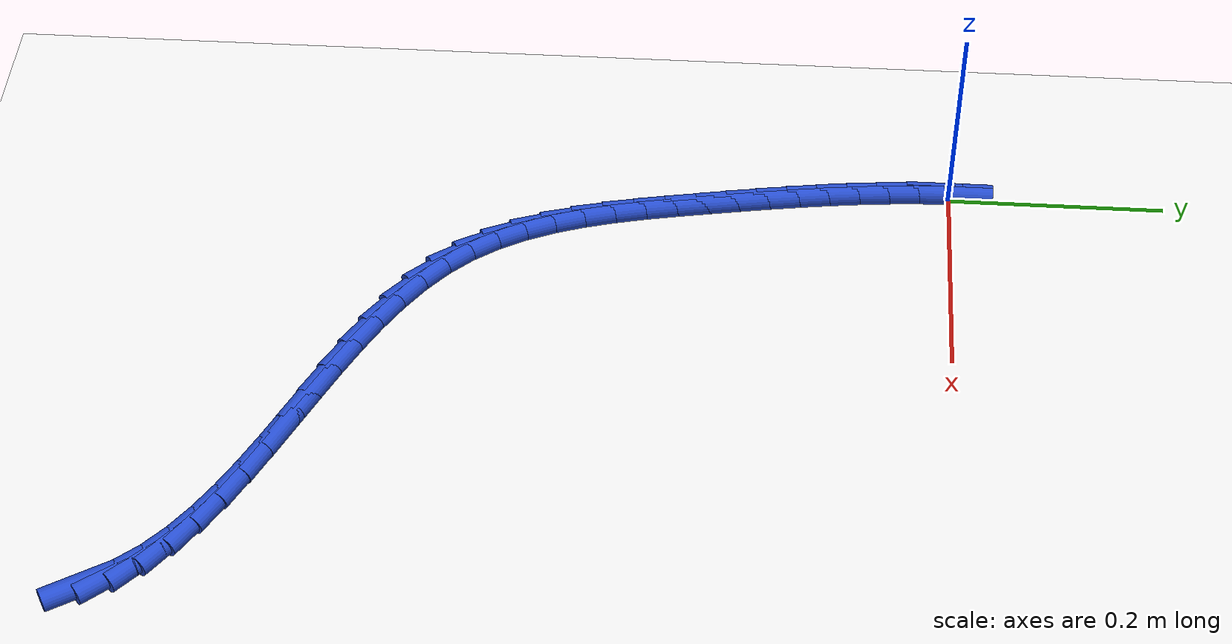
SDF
<sdf version="1.6">
 <world name="default">
  <model name="ground_plane">
   <static>1</static>
   <link name="link">
    <collision name="collision">
     <geometry><plane><normal>0 0 1</normal><size>100 100</size></plane></geometry>
     <surface><friction><ode><mu>100</mu><mu2>50</mu2></ode></friction></surface>
    </collision>
    <visual name="visual">
     <cast_shadows>0</cast_shadows>
     <geometry><plane><normal>0 0 1</normal><size>100 100</size></plane></geometry>
     <material>
      <script><uri>file://media/materials/scripts/gazebo.material</uri><name>Gazebo/WhiteGlow</name></script>
     </material>
    </visual>
   </link>
  </model>
  <model name="line">
   <link name="link_0">
    <pose>1.214306433183765e-17 -2.7755575615628914e-17 0.01 0 1.57 -1.569403293261762</pose>
    <collision name="collision">
     <geometry><cylinder><radius>0.01</radius><length>0.08</length></cylinder></geometry>
    </collision>
    <visual name="visual">
     <material>
      <script><name>Gazebo/Blue</name><uri>file://media/materials/scripts/gazebo.material</uri></script>
     </material>
     <geometry><cylinder><radius>0.01</radius><length>0.08</length></cylinder></geometry>
    </visual>
   </link>
   <link name="link_238">
    <pose>0.4884409696306866 -0.7109093418308293 0.01 0 1.57 -1.036121158485904</pose>
    <collision name="collision">
     <geometry><cylinder><radius>0.01</radius><length>0.08</length></cylinder></geometry>
    </collision>
    <visual name="visual">
     <material>
      <script><name>Gazebo/Blue</name><uri>file://media/materials/scripts/gazebo.material</uri></script>
     </material>
     <geometry><cylinder><radius>0.01</radius><length>0.08</length></cylinder></geometry>
    </visual>
   </link>
   <link name="link_239">
    <pose>0.47521776616132416 -0.688580938119624 0.01 0 1.57 -0.8766272644458876</pose>
    <collision name="collision">
     <geometry><cylinder><radius>0.01</radius><length>0.08</length></cylinder></geometry>
    </collision>
    <visual name="visual">
     <material>
      <script><name>Gazebo/Blue</name><uri>file://media/materials/scripts/gazebo.material</uri></script>
     </material>
     <geometry><cylinder><radius>0.01</radius><length>0.08</length></cylinder></geometry>
    </visual>
   </link>
   <link name="link_240">
    <pose>0.4583068516962378 -0.6682643374437599 0.01 0 1.57 -0.7455294964327617</pose>
    <collision name="collision">
     <geometry><cylinder><radius>0.01</radius><length>0.08</length></cylinder></geometry>
    </collision>
    <visual name="visual">
     <material>
      <script><name>Gazebo/Blue</name><uri>file://media/materials/scripts/gazebo.material</uri></script>
     </material>
     <geometry><cylinder><radius>0.01</radius><length>0.08</length></cylinder></geometry>
    </visual>
   </link>
   <link name="link_241">
    <pose>0.4381808990936235 -0.6496824336571388 0.01 0 1.57 -0.6427471409349513</pose>
    <collision name="collision">
     <geometry><cylinder><radius>0.01</radius><length>0.08</length></cylinder></geometry>
    </collision>
    <visual name="visual">
     <material>
      <script><name>Gazebo/Blue</name><uri>file://media/materials/scripts/gazebo.material</uri></script>
     </material>
     <geometry><cylinder><radius>0.01</radius><length>0.08</length></cylinder></geometry>
    </visual>
   </link>
   <link name="link_242">
    <pose>0.41531258121167547 -0.6325581206136601 0.01 0 1.57 -0.5652246535251038</pose>
    <collision name="collision">
     <geometry><cylinder><radius>0.01</radius><length>0.08</length></cylinder></geometry>
    </collision>
    <visual name="visual">
     <material>
      <script><name>Gazebo/Blue</name><uri>file://media/materials/scripts/gazebo.material</uri></script>
     </material>
     <geometry><cylinder><radius>0.01</radius><length>0.08</length></cylinder></geometry>
    </visual>
   </link>
   <link name="link_243">
    <pose>0.3901745709085902 -0.6166142921672247 0.01 0 1.57 -0.5092674639373485</pose>
    <collision name="collision">
     <geometry><cylinder><radius>0.01</radius><length>0.08</length></cylinder></geometry>
    </collision>
    <visual name="visual">
     <material>
      <script><name>Gazebo/Blue</name><uri>file://media/materials/scripts/gazebo.material</uri></script>
     </material>
     <geometry><cylinder><radius>0.01</radius><length>0.08</length></cylinder></geometry>
    </visual>
   </link>
   <link name="link_244">
    <pose>0.3632395410425615 -0.6015738421717324 0.01 0 1.57 -0.47166880030345837</pose>
    <collision name="collision">
     <geometry><cylinder><radius>0.01</radius><length>0.08</length></cylinder></geometry>
    </collision>
    <visual name="visual">
     <material>
      <script><name>Gazebo/Blue</name><uri>file://media/materials/scripts/gazebo.material</uri></script>
     </material>
     <geometry><cylinder><radius>0.01</radius><length>0.08</length></cylinder></geometry>
    </visual>
   </link>
   <link name="link_245">
    <pose>0.3349801644717862 -0.5871596644810841 0.01 0 1.57 -0.450077179918846</pose>
    <collision name="collision">
     <geometry><cylinder><radius>0.01</radius><length>0.08</length></cylinder></geometry>
    </collision>
    <visual name="visual">
     <material>
      <script><name>Gazebo/Blue</name><uri>file://media/materials/scripts/gazebo.material</uri></script>
     </material>
     <geometry><cylinder><radius>0.01</radius><length>0.08</length></cylinder></geometry>
    </visual>
   </link>
   <link name="link_246">
    <pose>0.30586911405445866 -0.5730946529491798 0.01 0 1.57 -0.44303814688323573</pose>
    <collision name="collision">
     <geometry><cylinder><radius>0.01</radius><length>0.08</length></cylinder></geometry>
    </collision>
    <visual name="visual">
     <material>
      <script><name>Gazebo/Blue</name><uri>file://media/materials/scripts/gazebo.material</uri></script>
     </material>
     <geometry><cylinder><radius>0.01</radius><length>0.08</length></cylinder></geometry>
    </visual>
   </link>
   <link name="link_247">
    <pose>0.2763790626487732 -0.5591017014299197 0.01 0 1.57 -0.4499428381016869</pose>
    <collision name="collision">
     <geometry><cylinder><radius>0.01</radius><length>0.08</length></cylinder></geometry>
    </collision>
    <visual name="visual">
     <material>
      <script><name>Gazebo/Blue</name><uri>file://media/materials/scripts/gazebo.material</uri></script>
     </material>
     <geometry><cylinder><radius>0.01</radius><length>0.08</length></cylinder></geometry>
    </visual>
   </link>
   <link name="link_248">
    <pose>0.24698268311292698 -0.5449037037772047 0.01 0 1.57 -0.4709776331988441</pose>
    <collision name="collision">
     <geometry><cylinder><radius>0.01</radius><length>0.08</length></cylinder></geometry>
    </collision>
    <visual name="visual">
     <material>
      <script><name>Gazebo/Blue</name><uri>file://media/materials/scripts/gazebo.material</uri></script>
     </material>
     <geometry><cylinder><radius>0.01</radius><length>0.08</length></cylinder></geometry>
    </visual>
   </link>
   <link name="link_249">
    <pose>0.21815264830511333 -0.5302235538449344 0.01 0 1.57 -0.5070972490722421</pose>
    <collision name="collision">
     <geometry><cylinder><radius>0.01</radius><length>0.08</length></cylinder></geometry>
    </collision>
    <visual name="visual">
     <material>
      <script><name>Gazebo/Blue</name><uri>file://media/materials/scripts/gazebo.material</uri></script>
     </material>
     <geometry><cylinder><radius>0.01</radius><length>0.08</length></cylinder></geometry>
    </visual>
   </link>
   <link name="link_250">
    <pose>0.19036163108352927 -0.5147841454870098 0.01 0 1.57 -0.5599989408351397</pose>
    <collision name="collision">
     <geometry><cylinder><radius>0.01</radius><length>0.08</length></cylinder></geometry>
    </collision>
    <visual name="visual">
     <material>
      <script><name>Gazebo/Blue</name><uri>file://media/materials/scripts/gazebo.material</uri></script>
     </material>
     <geometry><cylinder><radius>0.01</radius><length>0.08</length></cylinder></geometry>
    </visual>
   </link>
   <link name="link_251">
    <pose>0.16408230430636836 -0.4983083725573306 0.01 0 1.57 -0.6320240733677062</pose>
    <collision name="collision">
     <geometry><cylinder><radius>0.01</radius><length>0.08</length></cylinder></geometry>
    </collision>
    <visual name="visual">
     <material>
      <script><name>Gazebo/Blue</name><uri>file://media/materials/scripts/gazebo.material</uri></script>
     </material>
     <geometry><cylinder><radius>0.01</radius><length>0.08</length></cylinder></geometry>
    </visual>
   </link>
   <link name="link_252">
    <pose>0.13978734083182734 -0.480519128909798 0.01 0 1.57 -0.7258316178959472</pose>
    <collision name="collision">
     <geometry><cylinder><radius>0.01</radius><length>0.08</length></cylinder></geometry>
    </collision>
    <visual name="visual">
     <material>
      <script><name>Gazebo/Blue</name><uri>file://media/materials/scripts/gazebo.material</uri></script>
     </material>
     <geometry><cylinder><radius>0.01</radius><length>0.08</length></cylinder></geometry>
    </visual>
   </link>
   <link name="link_253">
    <pose>0.11794941351810007 -0.46113930839831135 0.01 0 1.57 -0.8431884027643276</pose>
    <collision name="collision">
     <geometry><cylinder><radius>0.01</radius><length>0.08</length></cylinder></geometry>
    </collision>
    <visual name="visual">
     <material>
      <script><name>Gazebo/Blue</name><uri>file://media/materials/scripts/gazebo.material</uri></script>
     </material>
     <geometry><cylinder><radius>0.01</radius><length>0.08</length></cylinder></geometry>
    </visual>
   </link>
   <link name="link_254">
    <pose>0.09903161089925588 -0.43989812108404297 0.01 0 1.57 -0.9690149470772454</pose>
    <collision name="collision">
     <geometry><cylinder><radius>0.01</radius><length>0.08</length></cylinder></geometry>
    </collision>
    <visual name="visual">
     <material>
      <script><name>Gazebo/Blue</name><uri>file://media/materials/scripts/gazebo.material</uri></script>
     </material>
     <geometry><cylinder><radius>0.01</radius><length>0.08</length></cylinder></geometry>
    </visual>
   </link>
   <link name="link_255">
    <pose>0.0831409830486899 -0.4167594114879536 0.01 0 1.57 -1.080936837800928</pose>
    <collision name="collision">
     <geometry><cylinder><radius>0.01</radius><length>0.08</length></cylinder></geometry>
    </collision>
    <visual name="visual">
     <material>
      <script><name>Gazebo/Blue</name><uri>file://media/materials/scripts/gazebo.material</uri></script>
     </material>
     <geometry><cylinder><radius>0.01</radius><length>0.08</length></cylinder></geometry>
    </visual>
   </link>
   <link name="link_256">
    <pose>0.06993142763190476 -0.39198565807698127 0.01 0 1.57 -1.1754277649570555</pose>
    <collision name="collision">
     <geometry><cylinder><radius>0.01</radius><length>0.08</length></cylinder></geometry>
    </collision>
    <visual name="visual">
     <material>
      <script><name>Gazebo/Blue</name><uri>file://media/materials/scripts/gazebo.material</uri></script>
     </material>
     <geometry><cylinder><radius>0.01</radius><length>0.08</length></cylinder></geometry>
    </visual>
   </link>
   <link name="link_257">
    <pose>0.05902748032386783 -0.3658586892915847 0.01 0 1.57 -1.2521036032085018</pose>
    <collision name="collision">
     <geometry><cylinder><radius>0.01</radius><length>0.08</length></cylinder></geometry>
    </collision>
    <visual name="visual">
     <material>
      <script><name>Gazebo/Blue</name><uri>file://media/materials/scripts/gazebo.material</uri></script>
     </material>
     <geometry><cylinder><radius>0.01</radius><length>0.08</length></cylinder></geometry>
    </visual>
   </link>
   <link name="link_258">
    <pose>0.05005367679954689 -0.3386603335722233 0.01 0 1.57 -1.3116729171773012</pose>
    <collision name="collision">
     <geometry><cylinder><radius>0.01</radius><length>0.08</length></cylinder></geometry>
    </collision>
    <visual name="visual">
     <material>
      <script><name>Gazebo/Blue</name><uri>file://media/materials/scripts/gazebo.material</uri></script>
     </material>
     <geometry><cylinder><radius>0.01</radius><length>0.08</length></cylinder></geometry>
    </visual>
   </link>
   <link name="link_259">
    <pose>0.042634552733910425 -0.31067241935935824 0.01 0 1.57 -1.3552213929013954</pose>
    <collision name="collision">
     <geometry><cylinder><radius>0.01</radius><length>0.08</length></cylinder></geometry>
    </collision>
    <visual name="visual">
     <material>
      <script><name>Gazebo/Blue</name><uri>file://media/materials/scripts/gazebo.material</uri></script>
     </material>
     <geometry><cylinder><radius>0.01</radius><length>0.08</length></cylinder></geometry>
    </visual>
   </link>
   <link name="link_260">
    <pose>0.03639464380192588 -0.28217677509344746 0.01 0 1.57 -1.3837379931550955</pose>
    <collision name="collision">
     <geometry><cylinder><radius>0.01</radius><length>0.08</length></cylinder></geometry>
    </collision>
    <visual name="visual">
     <material>
      <script><name>Gazebo/Blue</name><uri>file://media/materials/scripts/gazebo.material</uri></script>
     </material>
     <geometry><cylinder><radius>0.01</radius><length>0.08</length></cylinder></geometry>
    </visual>
   </link>
   <link name="link_261">
    <pose>0.030958485678561597 -0.2534552292149528 0.01 0 1.57 -1.3978677408803815</pose>
    <collision name="collision">
     <geometry><cylinder><radius>0.01</radius><length>0.08</length></cylinder></geometry>
    </collision>
    <visual name="visual">
     <material>
      <script><name>Gazebo/Blue</name><uri>file://media/materials/scripts/gazebo.material</uri></script>
     </material>
     <geometry><cylinder><radius>0.01</radius><length>0.08</length></cylinder></geometry>
    </visual>
   </link>
   <link name="link_262">
    <pose>0.02595128558152991 -0.22478912976023133 0.01 0 1.57 -1.4029190640754998</pose>
    <collision name="collision">
     <geometry><cylinder><radius>0.01</radius><length>0.08</length></cylinder></geometry>
    </collision>
    <visual name="visual">
     <material>
      <script><name>Gazebo/Blue</name><uri>file://media/materials/scripts/gazebo.material</uri></script>
     </material>
     <geometry><cylinder><radius>0.01</radius><length>0.08</length></cylinder></geometry>
    </visual>
   </link>
   <link name="link_263">
    <pose>0.021133816791935878 -0.19636284435258194 0.01 0 1.57 -1.4103035723080937</pose>
    <collision name="collision">
     <geometry><cylinder><radius>0.01</radius><length>0.08</length></cylinder></geometry>
    </collision>
    <visual name="visual">
     <material>
      <script><name>Gazebo/Blue</name><uri>file://media/materials/scripts/gazebo.material</uri></script>
     </material>
     <geometry><cylinder><radius>0.01</radius><length>0.08</length></cylinder></geometry>
    </visual>
   </link>
   <link name="link_264">
    <pose>0.016566044795074304 -0.16814670634432347 0.01 0 1.57 -1.4216104982783881</pose>
    <collision name="collision">
     <geometry><cylinder><radius>0.01</radius><length>0.08</length></cylinder></geometry>
    </collision>
    <visual name="visual">
     <material>
      <script><name>Gazebo/Blue</name><uri>file://media/materials/scripts/gazebo.material</uri></script>
     </material>
     <geometry><cylinder><radius>0.01</radius><length>0.08</length></cylinder></geometry>
    </visual>
   </link>
   <link name="link_265">
    <pose>0.012347915207708154 -0.140082448348279 0.01 0 1.57 -1.4368707913326502</pose>
    <collision name="collision">
     <geometry><cylinder><radius>0.01</radius><length>0.08</length></cylinder></geometry>
    </collision>
    <visual name="visual">
     <material>
      <script><name>Gazebo/Blue</name><uri>file://media/materials/scripts/gazebo.material</uri></script>
     </material>
     <geometry><cylinder><radius>0.01</radius><length>0.08</length></cylinder></geometry>
    </visual>
   </link>
   <link name="link_266">
    <pose>0.008579373646599841 -0.11211180297726815 0.01 0 1.57 -1.4560714854386658</pose>
    <collision name="collision">
     <geometry><cylinder><radius>0.01</radius><length>0.08</length></cylinder></geometry>
    </collision>
    <visual name="visual">
     <material>
      <script><name>Gazebo/Blue</name><uri>file://media/materials/scripts/gazebo.material</uri></script>
     </material>
     <geometry><cylinder><radius>0.01</radius><length>0.08</length></cylinder></geometry>
    </visual>
   </link>
   <link name="link_267">
    <pose>0.005360365728512272 -0.08417650284411406 0.01 0 1.57 -1.4791477811022795</pose>
    <collision name="collision">
     <geometry><cylinder><radius>0.01</radius><length>0.08</length></cylinder></geometry>
    </collision>
    <visual name="visual">
     <material>
      <script><name>Gazebo/Blue</name><uri>file://media/materials/scripts/gazebo.material</uri></script>
     </material>
     <geometry><cylinder><radius>0.01</radius><length>0.08</length></cylinder></geometry>
    </visual>
   </link>
   <link name="link_268">
    <pose>0.0027908370702080017 -0.05621828056163726 0.01 0 1.57 -1.5059749306250272</pose>
    <collision name="collision">
     <geometry><cylinder><radius>0.01</radius><length>0.08</length></cylinder></geometry>
    </collision>
    <visual name="visual">
     <material>
      <script><name>Gazebo/Blue</name><uri>file://media/materials/scripts/gazebo.material</uri></script>
     </material>
     <geometry><cylinder><radius>0.01</radius><length>0.08</length></cylinder></geometry>
    </visual>
   </link>
   <link name="link_269">
    <pose>0.0009707332884496523 -0.028178868742658243 0.01 0 1.57 -1.536360964242091</pose>
    <collision name="collision">
     <geometry><cylinder><radius>0.01</radius><length>0.08</length></cylinder></geometry>
    </collision>
    <visual name="visual">
     <material>
      <script><name>Gazebo/Blue</name><uri>file://media/materials/scripts/gazebo.material</uri></script>
     </material>
     <geometry><cylinder><radius>0.01</radius><length>0.08</length></cylinder></geometry>
    </visual>
   </link>
   <link name="link_270">
    <pose>1.8648277366750676e-17 -1.249000902703301e-16 0.01 0 1.57 -1.570041578884491</pose>
    <collision name="collision">
     <geometry><cylinder><radius>0.01</radius><length>0.08</length></cylinder></geometry>
    </collision>
    <visual name="visual">
     <material>
      <script><name>Gazebo/Blue</name><uri>file://media/materials/scripts/gazebo.material</uri></script>
     </material>
     <geometry><cylinder><radius>0.01</radius><length>0.08</length></cylinder></geometry>
    </visual>
   </link>
  </model>
 </world>
</sdf>
